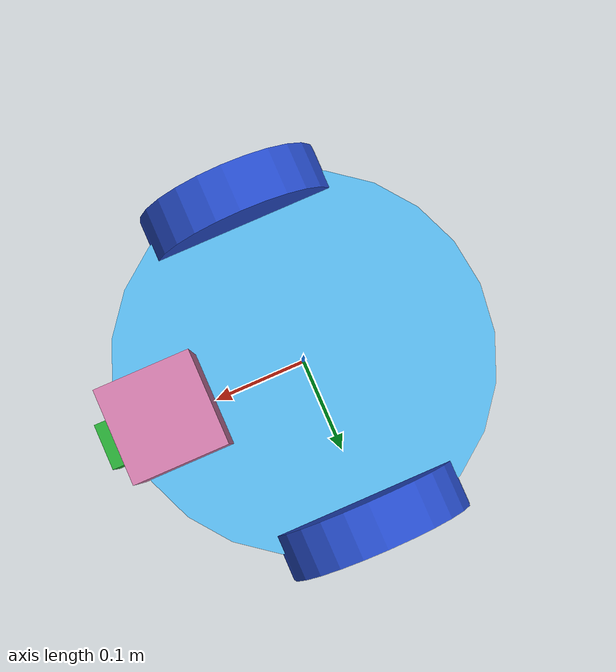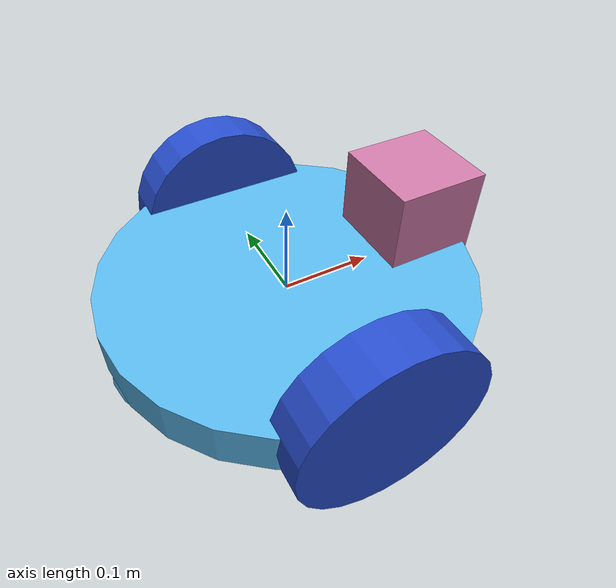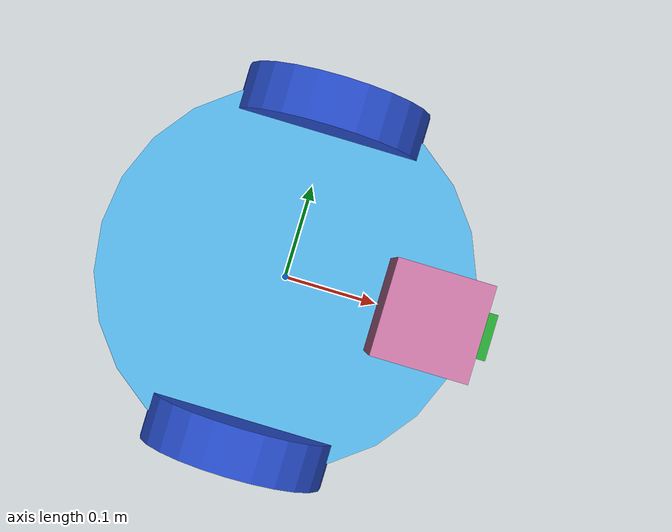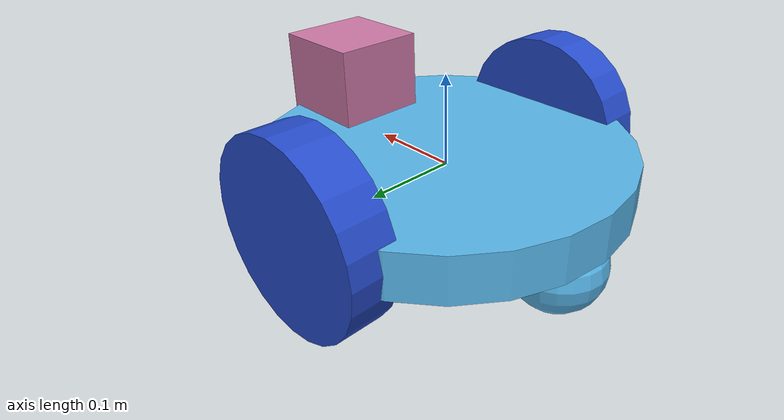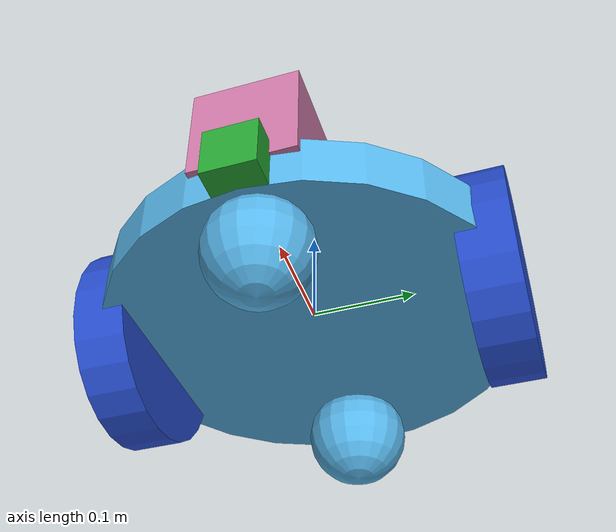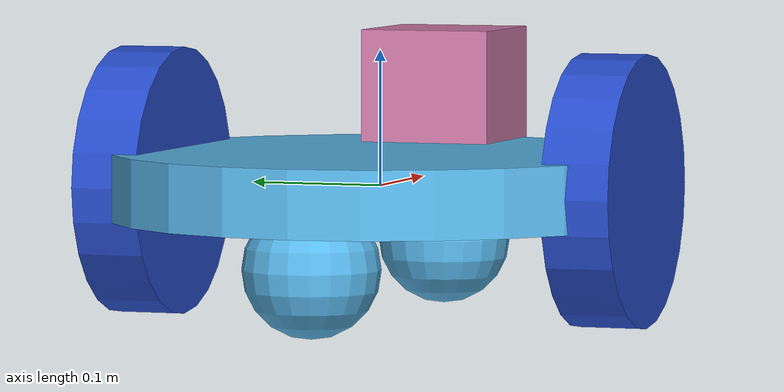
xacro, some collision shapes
<?xml version='1.0'?>

<robot name="udacity_bot" xmlns:xacro="http://www.ros.org/wiki/xacro">

  <!--Add gazzebo plugins-->
  <xacro:include filename="$(find map_my_world)/urdf/udacity_bot.gazebo" />

  <link name="base_footprint"></link>

  <joint name="base_footprint_joint" type="fixed">
    <origin xyz="0 0 0" rpy="0 0 0" />
    <parent link="base_footprint"/>
    <child link="chassis" />
  </joint>

  <link name='chassis'>
    <pose>0 0 0.1 0 0 0</pose>

    <inertial>
      <mass value="15.0"/>
      <origin xyz="0.0 0 0" rpy=" 0 0 0"/>
      <inertia
          ixx="0.1" ixy="0" ixz="0"
          iyy="0.1" iyz="0"
          izz="0.1"
      />
    </inertial>

    <collision name='collision'>
      <origin xyz="0 0 0" rpy=" 0 0 0"/>
      <geometry>
        <!--box size=".4 .2 .1"/-->
        <cylinder radius="0.2" length="0.05"/>
      </geometry>
    </collision>

    <visual name='chassis_visual'>
      <origin xyz="0 0 0" rpy=" 0 0 0"/>
      <geometry>
        <!--box size=".4 .2 .1"/-->
        <cylinder radius="0.2" length="0.05"/>
      </geometry>
    </visual>

    <collision name='back_caster_collision'>
      <origin xyz="-0.15 0 -0.05" rpy=" 0 0 0"/>
      <geometry>
        <sphere radius="0.0499"/>
      </geometry>
    </collision>

    <visual name='back_caster_visual'>
      <origin xyz="-0.15 0 -0.05" rpy=" 0 0 0"/>
      <geometry>
        <sphere radius="0.05"/>
      </geometry>
    </visual>

    <collision name='front_caster_collision'>
      <origin xyz="0.15 0 -0.05" rpy=" 0 0 0"/>
      <geometry>
        <sphere radius="0.0499"/>
      </geometry>
    </collision>

    <visual name='front_caster_visual'>
      <origin xyz="0.15 0 -0.05" rpy=" 0 0 0"/>
      <geometry>
        <sphere radius="0.05"/>
      </geometry>
    </visual>

  </link>

  <link name="left_wheel">
    <pose>0 0 0 0 0 0</pose>
    <inertial>
      <mass value="5.0"/>
      <origin xyz="0.0 0.0 0.0" rpy=" 0 1.5707 1.5707"/>
      <inertia
          ixx="0.1" ixy="0" ixz="0"
          iyy="0.1" iyz="0"
          izz="0.1"
      />
    </inertial>

    <collision name='left_wheel_collision'>
      <origin xyz="0 0 0" rpy=" 0 1.5707 1.5707"/>
      <geometry>
        <cylinder radius="0.1" length="0.05"/>
      </geometry>
    </collision>

    <visual name='left_wheel_visual'>
      <origin xyz="0 0 0" rpy=" 0 1.5707 1.5707"/>
      <geometry>
        <cylinder radius="0.1" length="0.05"/>
      </geometry>
    </visual>
  </link>

  <link name="right_wheel">
    <pose>0 0 0 0 0 0</pose>
    <inertial>
      <mass value="5.0"/>
      <origin xyz="0.0 0.0 0.0" rpy=" 0 1.5707 1.5707"/>
      <inertia
          ixx="0.1" ixy="0" ixz="0"
          iyy="0.1" iyz="0"
          izz="0.1"
      />
    </inertial>

    <collision name='right_wheel_collision'>
      <origin xyz="0 0 0" rpy=" 0 1.5707 1.5707"/>
      <geometry>
        <cylinder radius="0.1" length="0.05"/>
      </geometry>
    </collision>

    <visual name='right_wheel_visual'>
      <origin xyz="0 0 0" rpy=" 0 1.5707 1.5707"/>
      <geometry>
        <cylinder radius="0.1" length="0.05"/>
      </geometry>
    </visual>
  </link>

  <link name="camera_link">
    <pose>0 0 0 0 0 0</pose>
    <inertial>
      <mass value="0.1"/>
      <origin xyz="0.0 0.0 0.0" rpy=" 0 1.5707 1.5707"/>
      <inertia
          ixx="1e-6" ixy="0" ixz="0"
          iyy="1e-6" iyz="0"
          izz="1e-6"
      />
    </inertial>

    <collision name='right_wheel_collision'>
      <origin xyz="0 0 0" rpy=" 0 0 0"/>
      <geometry>
        <box size="0.05 0.05 0.05"/>
      </geometry>
    </collision>

    <visual name='right_wheel_visual'>
      <origin xyz="0 0 0" rpy=" 0 0 0"/>
      <geometry>
        <box size="0.05 0.05 0.05"/>
      </geometry>
    </visual>
  </link>

  <link name="camera_link_optical">
  </link>

  <link name="hokuyo">
    <pose>0 0 0 0 0 0</pose>
    <inertial>
      <origin xyz="0.0 0.0 0.0" rpy="0.0 0.0 0.0"/>
      <mass value="0.1"/>
      <inertia ixx="1e-6" ixy="0.0" ixz="0.0" iyy="1e-6" iyz="0.0" izz="1e-6"/>
    </inertial>

    <visual name="hokuyo_visual">
      <origin xyz="0.0 0.0 0.0" rpy="0.0 0.0 0.0"/>
      <geometry>
        <mesh filename="package://udacity_bot/meshes/hokuyo.dae"/>
      </geometry>
    </visual>
    <collision>
      <origin xyz="0.0 0.0 0.0" rpy="0.0 0.0 0.0"/>
      <geometry>
        <box size="0.1 0.1 0.1"/>
      </geometry>
    </collision>
  </link>

  <!--Joints-->

  <joint name="hokuyo_joint" type="fixed">
    <origin xyz="0.15 0.0 0.06" rpy="0.0 0.0 0.0"/>
    <parent link="chassis"/>
    <child link="hokuyo"/>
    <axis xyz="0.15 0.0 0.15"/>
  </joint>

  <joint name="camera_joint" type="fixed">
    <origin xyz="0.2 0.0 0.0" rpy="0.0 0.0 0.0"/>
    <parent link="chassis"/>
    <child link="camera_link"/>
    <axis xyz="0.0 0.0 0.0"/>
  </joint>

  <joint name="camera_optical_joint" type="fixed">
    <origin xyz="0 0 0" rpy="${-pi/2} 0 ${-pi/2}"/>
    <parent link="camera_link"/>
    <child link="camera_link_optical"/>
  </joint>

  <joint type="continuous" name="left_wheel_hinge">
    <origin xyz="0 0.18 0" rpy="0 0 0"/>
    <child link="left_wheel"/>
    <parent link="chassis"/>
    <axis xyz="0 1 0" rpy="0 0 0"/>
    <limit effort="10000" velocity="1000"/>
    <dynamics damping="1.0" friction="1.0"/>
  </joint>

  <joint type="continuous" name="right_wheel_hinge">
    <origin xyz="0 -0.18 0" rpy="0 0 0"/>
    <child link="right_wheel"/>
    <parent link="chassis"/>
    <axis xyz="0 1 0" rpy="0 0 0"/>
    <limit effort="10000" velocity="1000"/>
    <dynamics damping="1.0" friction="1.0"/>
  </joint>

</robot>
